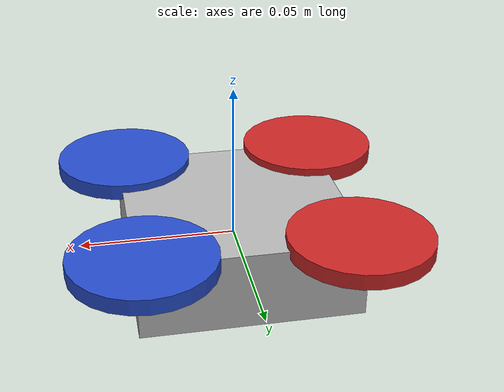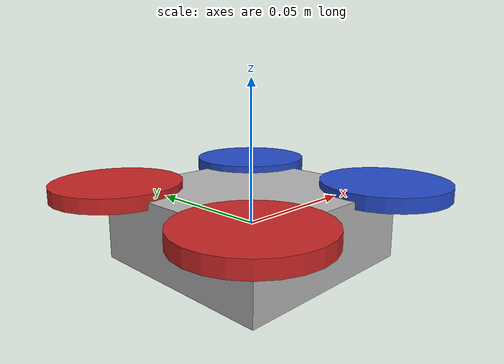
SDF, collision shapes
<sdf version='1.6'>
  <model name='crazyflie'>
    <link name='base_link'>
      <pose frame=''>0 0 0 0 -0 0</pose>
      <inertial>
        <pose frame=''>0 0 0 0 -0 0</pose>
        <mass>0.025</mass>
        <inertia>
          <ixx>1.65717e-05</ixx>
          <ixy>8.30806e-07</ixy>
          <ixz>7.18277e-07</ixz>
          <iyy>1.66556e-05</iyy>
          <iyz>1.8002e-06</iyz>
          <izz>2.92617e-05</izz>
        </inertia>
      </inertial>
      <collision name='base_link_inertia_collision'>
        <pose frame=''>0 0 0 0 -0 0</pose>
        <geometry>
          <box>
            <size>0.07 0.07 0.025</size>
          </box>
        </geometry>
        <surface>
          <contact>
            <ode>
              <min_depth>0.001</min_depth>
              <max_vel>0</max_vel>
            </ode>
          </contact>
          <friction>
            <ode/>
          </friction>
        </surface>
      </collision>
      <visual name='base_link_inertia_visual'>
        <pose frame=''>0 0 0 0 -0 0</pose>
        <geometry>
          <mesh>
            <scale>1 1 1</scale>
            <uri>/home/arpad/dev/sp/rosws/src/sim_cf/crazyflie_gazebo/models/rotors_description/meshes/crazyflie.dae</uri>
          </mesh>
        </geometry>
        <material>
          <script>
            <uri>__default__</uri>
            <name>__default__</name>
          </script>
        </material>
      </visual>
      <gravity>1</gravity>
      <velocity_decay/>
    </link>
    <link name='//imu_link'>
      <pose frame=''>0 0 0 0 -0 0</pose>
      <inertial>
        <pose frame=''>0 0 0 0 -0 0</pose>
        <mass>1e-05</mass>
        <inertia>
          <ixx>1e-10</ixx>
          <ixy>0</ixy>
          <ixz>0</ixz>
          <iyy>1e-10</iyy>
          <iyz>0</iyz>
          <izz>1e-10</izz>
        </inertia>
      </inertial>
    </link>
    <joint name='//imu_joint' type='revolute'>
      <child>//imu_link</child>
      <parent>base_link</parent>
      <axis>
        <xyz>1 0 0</xyz>
        <limit>
          <lower>0</lower>
          <upper>0</upper>
          <effort>0</effort>
          <velocity>0</velocity>
        </limit>
        <dynamics>
          <spring_reference>0</spring_reference>
          <spring_stiffness>0</spring_stiffness>
        </dynamics>
        <use_parent_model_frame>1</use_parent_model_frame>
      </axis>
    </joint>
    <link name='//magnetometer_link'>
      <pose frame=''>0 0 0 0 -0 0</pose>
      <inertial>
        <pose frame=''>0 0 0 0 -0 0</pose>
        <mass>1e-05</mass>
        <inertia>
          <ixx>1e-10</ixx>
          <ixy>0</ixy>
          <ixz>0</ixz>
          <iyy>1e-10</iyy>
          <iyz>0</iyz>
          <izz>1e-10</izz>
        </inertia>
      </inertial>
    </link>
    <joint name='//magnetometer_joint' type='revolute'>
      <child>//magnetometer_link</child>
      <parent>base_link</parent>
      <axis>
        <xyz>1 0 0</xyz>
        <limit>
          <lower>0</lower>
          <upper>0</upper>
          <effort>0</effort>
          <velocity>0</velocity>
        </limit>
        <dynamics>
          <spring_reference>0</spring_reference>
          <spring_stiffness>0</spring_stiffness>
        </dynamics>
        <use_parent_model_frame>1</use_parent_model_frame>
      </axis>
    </joint>
    <link name='//pressure_sensor_link'>
      <pose frame=''>0 0 0 0 -0 0</pose>
      <inertial>
        <pose frame=''>0 0 0 0 -0 0</pose>
        <mass>1e-05</mass>
        <inertia>
          <ixx>1e-10</ixx>
          <ixy>0</ixy>
          <ixz>0</ixz>
          <iyy>1e-10</iyy>
          <iyz>0</iyz>
          <izz>1e-10</izz>
        </inertia>
      </inertial>
    </link>
    <joint name='//pressure_sensor_joint' type='revolute'>
      <child>//pressure_sensor_link</child>
      <parent>base_link</parent>
      <axis>
        <xyz>1 0 0</xyz>
        <limit>
          <lower>0</lower>
          <upper>0</upper>
          <effort>0</effort>
          <velocity>0</velocity>
        </limit>
        <dynamics>
          <spring_reference>0</spring_reference>
          <spring_stiffness>0</spring_stiffness>
        </dynamics>
        <use_parent_model_frame>1</use_parent_model_frame>
      </axis>
    </joint>
    <link name='/odometry_sensorgt_link'>
      <pose frame=''>0 0 0 0 -0 0</pose>
      <inertial>
        <pose frame=''>0 0 0 0 -0 0</pose>
        <mass>1e-05</mass>
        <inertia>
          <ixx>1e-10</ixx>
          <ixy>0</ixy>
          <ixz>0</ixz>
          <iyy>1e-10</iyy>
          <iyz>0</iyz>
          <izz>1e-10</izz>
        </inertia>
      </inertial>
    </link>
    <joint name='/odometry_sensorgt_joint' type='revolute'>
      <child>/odometry_sensorgt_link</child>
      <parent>base_link</parent>
      <axis>
        <xyz>1 0 0</xyz>
        <limit>
          <lower>0</lower>
          <upper>0</upper>
          <effort>0</effort>
          <velocity>0</velocity>
        </limit>
        <dynamics>
          <spring_reference>0</spring_reference>
          <spring_stiffness>0</spring_stiffness>
        </dynamics>
        <use_parent_model_frame>1</use_parent_model_frame>
      </axis>
    </joint>
    <link name='rotor_0'>
      <pose frame=''>0.032527 -0.032527 0.0125 0 -0 0</pose>
      <inertial>
        <pose frame=''>0 0 0 0 -0 0</pose>
        <mass>0.00075</mass>
        <inertia>
          <ixx>1.61875e-07</ixx>
          <ixy>0</ixy>
          <ixz>0</ixz>
          <iyy>8.86375e-06</iyy>
          <iyz>0</iyz>
          <izz>9.01687e-06</izz>
        </inertia>
      </inertial>
      <collision name='rotor_0_collision'>
        <pose frame=''>0 0 0 0 -0 0</pose>
        <geometry>
          <cylinder>
            <length>0.005</length>
            <radius>0.0225</radius>
          </cylinder>
        </geometry>
        <surface>
          <contact>
            <ode/>
          </contact>
          <friction>
            <ode/>
          </friction>
        </surface>
      </collision>
      <visual name='rotor_0_visual'>
        <pose frame=''>0 0 0 0 -0 0</pose>
        <geometry>
          <mesh>
            <scale>1 1 1</scale>
            <uri>/home/arpad/dev/sp/rosws/src/sim_cf/crazyflie_gazebo/models/rotors_description/meshes/crazyflie_prop.dae</uri>
          </mesh>
        </geometry>
        <material>
          <script>
            <name>Gazebo/Blue</name>
            <uri>file://media/materials/scripts/gazebo.material</uri>
          </script>
        </material>
      </visual>
      <gravity>1</gravity>
      <velocity_decay/>
    </link>
    <joint name='rotor_0_joint' type='revolute'>
      <child>rotor_0</child>
      <parent>base_link</parent>
      <axis>
        <xyz>0 0 1</xyz>
        <limit>
          <lower>-1e+16</lower>
          <upper>1e+16</upper>
        </limit>
        <dynamics>
          <spring_reference>0</spring_reference>
          <spring_stiffness>0</spring_stiffness>
        </dynamics>
        <use_parent_model_frame>1</use_parent_model_frame>
      </axis>
    </joint>
    <link name='rotor_1'>
      <pose frame=''>-0.032527 -0.032527 0.0125 0 -0 0</pose>
      <inertial>
        <pose frame=''>0 0 0 0 -0 0</pose>
        <mass>0.00075</mass>
        <inertia>
          <ixx>1.61875e-07</ixx>
          <ixy>0</ixy>
          <ixz>0</ixz>
          <iyy>8.86375e-06</iyy>
          <iyz>0</iyz>
          <izz>9.01687e-06</izz>
        </inertia>
      </inertial>
      <collision name='rotor_1_collision'>
        <pose frame=''>0 0 0 0 -0 0</pose>
        <geometry>
          <cylinder>
            <length>0.005</length>
            <radius>0.0225</radius>
          </cylinder>
        </geometry>
        <surface>
          <contact>
            <ode/>
          </contact>
          <friction>
            <ode/>
          </friction>
        </surface>
      </collision>
      <visual name='rotor_1_visual'>
        <pose frame=''>0 0 0 0 -0 0</pose>
        <geometry>
          <mesh>
            <scale>1 1 1</scale>
            <uri>/home/arpad/dev/sp/rosws/src/sim_cf/crazyflie_gazebo/models/rotors_description/meshes/crazyflie_prop.dae</uri>
          </mesh>
        </geometry>
        <material>
          <script>
            <name>Gazebo/Red</name>
            <uri>file://media/materials/scripts/gazebo.material</uri>
          </script>
        </material>
      </visual>
      <gravity>1</gravity>
      <velocity_decay/>
    </link>
    <joint name='rotor_1_joint' type='revolute'>
      <child>rotor_1</child>
      <parent>base_link</parent>
      <axis>
        <xyz>0 0 1</xyz>
        <limit>
          <lower>-1e+16</lower>
          <upper>1e+16</upper>
        </limit>
        <dynamics>
          <spring_reference>0</spring_reference>
          <spring_stiffness>0</spring_stiffness>
        </dynamics>
        <use_parent_model_frame>1</use_parent_model_frame>
      </axis>
    </joint>
    <link name='rotor_2'>
      <pose frame=''>-0.032527 0.032527 0.0125 0 -0 0</pose>
      <inertial>
        <pose frame=''>0 0 0 0 -0 0</pose>
        <mass>0.00075</mass>
        <inertia>
          <ixx>1.61875e-07</ixx>
          <ixy>0</ixy>
          <ixz>0</ixz>
          <iyy>8.86375e-06</iyy>
          <iyz>0</iyz>
          <izz>9.01687e-06</izz>
        </inertia>
      </inertial>
      <collision name='rotor_2_collision'>
        <pose frame=''>0 0 0 0 -0 0</pose>
        <geometry>
          <cylinder>
            <length>0.005</length>
            <radius>0.0225</radius>
          </cylinder>
        </geometry>
        <surface>
          <contact>
            <ode/>
          </contact>
          <friction>
            <ode/>
          </friction>
        </surface>
      </collision>
      <visual name='rotor_2_visual'>
        <pose frame=''>0 0 0 0 -0 0</pose>
        <geometry>
          <mesh>
            <scale>1 1 1</scale>
            <uri>/home/arpad/dev/sp/rosws/src/sim_cf/crazyflie_gazebo/models/rotors_description/meshes/crazyflie_prop.dae</uri>
          </mesh>
        </geometry>
        <material>
          <script>
            <name>Gazebo/Red</name>
            <uri>file://media/materials/scripts/gazebo.material</uri>
          </script>
        </material>
      </visual>
      <gravity>1</gravity>
      <velocity_decay/>
    </link>
    <joint name='rotor_2_joint' type='revolute'>
      <child>rotor_2</child>
      <parent>base_link</parent>
      <axis>
        <xyz>0 0 1</xyz>
        <limit>
          <lower>-1e+16</lower>
          <upper>1e+16</upper>
        </limit>
        <dynamics>
          <spring_reference>0</spring_reference>
          <spring_stiffness>0</spring_stiffness>
        </dynamics>
        <use_parent_model_frame>1</use_parent_model_frame>
      </axis>
    </joint>
    <link name='rotor_3'>
      <pose frame=''>0.032527 0.032527 0.0125 0 -0 0</pose>
      <inertial>
        <pose frame=''>0 0 0 0 -0 0</pose>
        <mass>0.00075</mass>
        <inertia>
          <ixx>1.61875e-07</ixx>
          <ixy>0</ixy>
          <ixz>0</ixz>
          <iyy>8.86375e-06</iyy>
          <iyz>0</iyz>
          <izz>9.01687e-06</izz>
        </inertia>
      </inertial>
      <collision name='rotor_3_collision'>
        <pose frame=''>0 0 0 0 -0 0</pose>
        <geometry>
          <cylinder>
            <length>0.005</length>
            <radius>0.0225</radius>
          </cylinder>
        </geometry>
        <surface>
          <contact>
            <ode/>
          </contact>
          <friction>
            <ode/>
          </friction>
        </surface>
      </collision>
      <visual name='rotor_3_visual'>
        <pose frame=''>0 0 0 0 -0 0</pose>
        <geometry>
          <mesh>
            <scale>1 1 1</scale>
            <uri>/home/arpad/dev/sp/rosws/src/sim_cf/crazyflie_gazebo/models/rotors_description/meshes/crazyflie_prop.dae</uri>
          </mesh>
        </geometry>
        <material>
          <script>
            <name>Gazebo/Blue</name>
            <uri>file://media/materials/scripts/gazebo.material</uri>
          </script>
        </material>
      </visual>
      <gravity>1</gravity>
      <velocity_decay/>
    </link>
    <joint name='rotor_3_joint' type='revolute'>
      <child>rotor_3</child>
      <parent>base_link</parent>
      <axis>
        <xyz>0 0 1</xyz>
        <limit>
          <lower>-1e+16</lower>
          <upper>1e+16</upper>
        </limit>
        <dynamics>
          <spring_reference>0</spring_reference>
          <spring_stiffness>0</spring_stiffness>
        </dynamics>
        <use_parent_model_frame>1</use_parent_model_frame>
      </axis>
    </joint>
    <plugin name='rosbag' filename='librotors_gazebo_multirotor_base_plugin.so'>
      <robotNamespace>/</robotNamespace>
      <linkName>base_link</linkName>
      <rotorVelocitySlowdownSim>70</rotorVelocitySlowdownSim>
    </plugin>
    <plugin name='front_right_motor_model' filename='librotors_gazebo_motor_model.so'>
      <robotNamespace>/</robotNamespace>
      <jointName>rotor_0_joint</jointName>
      <linkName>rotor_0</linkName>
      <turningDirection>ccw</turningDirection>
      <timeConstantUp>0.0125</timeConstantUp>
      <timeConstantDown>0.025</timeConstantDown>
      <maxRotVelocity>3052</maxRotVelocity>
      <motorConstant>1.2819184e-08</motorConstant>
      <momentConstant>0.005964552</momentConstant>
      <commandSubTopic>/gazebo/command/motor_speed</commandSubTopic>
      <motorNumber>0</motorNumber>
      <rotorDragCoefficient>9.1785e-07</rotorDragCoefficient>
      <rollingMomentCoefficient>1e-07</rollingMomentCoefficient>
      <motorSpeedPubTopic>/motor_speed/0</motorSpeedPubTopic>
      <rotorVelocitySlowdownSim>70</rotorVelocitySlowdownSim>
    </plugin>
    <plugin name='back_left_motor_model' filename='librotors_gazebo_motor_model.so'>
      <robotNamespace>/</robotNamespace>
      <jointName>rotor_2_joint</jointName>
      <linkName>rotor_2</linkName>
      <turningDirection>ccw</turningDirection>
      <timeConstantUp>0.0125</timeConstantUp>
      <timeConstantDown>0.025</timeConstantDown>
      <maxRotVelocity>3052</maxRotVelocity>
      <motorConstant>1.2819184e-08</motorConstant>
      <momentConstant>0.005964552</momentConstant>
      <commandSubTopic>/gazebo/command/motor_speed</commandSubTopic>
      <motorNumber>2</motorNumber>
      <rotorDragCoefficient>9.1785e-07</rotorDragCoefficient>
      <rollingMomentCoefficient>1e-07</rollingMomentCoefficient>
      <motorSpeedPubTopic>/motor_speed/2</motorSpeedPubTopic>
      <rotorVelocitySlowdownSim>70</rotorVelocitySlowdownSim>
    </plugin>
    <plugin name='front_left_motor_model' filename='librotors_gazebo_motor_model.so'>
      <robotNamespace>/</robotNamespace>
      <jointName>rotor_3_joint</jointName>
      <linkName>rotor_3</linkName>
      <turningDirection>cw</turningDirection>
      <timeConstantUp>0.0125</timeConstantUp>
      <timeConstantDown>0.025</timeConstantDown>
      <maxRotVelocity>3052</maxRotVelocity>
      <motorConstant>1.2819184e-08</motorConstant>
      <momentConstant>0.005964552</momentConstant>
      <commandSubTopic>/gazebo/command/motor_speed</commandSubTopic>
      <motorNumber>3</motorNumber>
      <rotorDragCoefficient>9.1785e-07</rotorDragCoefficient>
      <rollingMomentCoefficient>1e-07</rollingMomentCoefficient>
      <motorSpeedPubTopic>/motor_speed/3</motorSpeedPubTopic>
      <rotorVelocitySlowdownSim>70</rotorVelocitySlowdownSim>
    </plugin>
    <plugin name='back_right_motor_model' filename='librotors_gazebo_motor_model.so'>
      <robotNamespace>/</robotNamespace>
      <jointName>rotor_1_joint</jointName>
      <linkName>rotor_1</linkName>
      <turningDirection>cw</turningDirection>
      <timeConstantUp>0.0125</timeConstantUp>
      <timeConstantDown>0.025</timeConstantDown>
      <maxRotVelocity>3052</maxRotVelocity>
      <motorConstant>1.2819184e-08</motorConstant>
      <momentConstant>0.005964552</momentConstant>
      <commandSubTopic>/gazebo/command/motor_speed</commandSubTopic>
      <motorNumber>1</motorNumber>
      <rotorDragCoefficient>9.1785e-07</rotorDragCoefficient>
      <rollingMomentCoefficient>1e-07</rollingMomentCoefficient>
      <motorSpeedPubTopic>/motor_speed/1</motorSpeedPubTopic>
      <rotorVelocitySlowdownSim>70</rotorVelocitySlowdownSim>
    </plugin>
    <plugin name='rotors_gazebo_imu_plugin' filename='librotors_gazebo_imu_plugin.so'>
      <robotNamespace>/</robotNamespace>
      <linkName>//imu_link</linkName>
      <imuTopic>gazebo/imu</imuTopic>
      <gyroscopeNoiseDensity>0.00017667</gyroscopeNoiseDensity>
      <gyroscopeRandomWalk>9.2542e-06</gyroscopeRandomWalk>
      <gyroscopeBiasCorrelationTime>1000.0</gyroscopeBiasCorrelationTime>
      <gyroscopeTurnOnBiasSigma>0.03</gyroscopeTurnOnBiasSigma>
      <accelerometerNoiseDensity>0.0032</accelerometerNoiseDensity>
      <accelerometerRandomWalk>0.00013524</accelerometerRandomWalk>
      <accelerometerBiasCorrelationTime>300.0</accelerometerBiasCorrelationTime>
      <accelerometerTurnOnBiasSigma>0.1</accelerometerTurnOnBiasSigma>
    </plugin>
    <plugin name='rotors_gazebo_magnetometer_plugin' filename='librotors_gazebo_magnetometer_plugin.so'>
      <robotNamespace>/</robotNamespace>
      <linkName>//magnetometer_link</linkName>
      <magnetometerTopic>gazebo/magnetic_field</magnetometerTopic>
      <rate>10</rate>
      <refMagNorth>2.1493e-05</refMagNorth>
      <refMagEast>8.15e-07</refMagEast>
      <refMagDown>4.2795e-05</refMagDown>
      <noiseNormal>7.07868618e-07 6.73106045e-07 7.28724033e-07</noiseNormal>
      <noiseUniformInitialBias>0.0000004 0.0000004 0.0000004</noiseUniformInitialBias>
    </plugin>
    <plugin name='rotors_gazebo_pressure_sensor_plugin' filename='librotors_gazebo_pressure_plugin.so'>
      <robotNamespace>/</robotNamespace>
      <linkName>//pressure_sensor_link</linkName>
      <pressureTopic>gazebo/air_pressure</pressureTopic>
      <rate>10</rate>
      <referenceAltitude>500.0</referenceAltitude>
      <pressureVariance>399.143626</pressureVariance>
    </plugin>
    <plugin name='lps_plugin' filename='librotors_gazebo_lps_plugin.so'>
      <robotNamespace>/</robotNamespace>
      <lpsStdDev>0.0</lpsStdDev>
      <rate>100</rate>
    </plugin>
    <plugin name='crtp_interface' filename='libgazebo_crtp_interface.so'>
      <robotNamespace>/</robotNamespace>
      <imuSubTopic>gazebo/imu</imuSubTopic>
      <magnetometerTopic>gazebo/magnetic_field</magnetometerTopic>
      <pressureTopic>gazebo/air_pressure</pressureTopic>
      <motorSpeedsPubTopic>gazebo/command/motor_speed</motorSpeedsPubTopic>
      <crazyflieURI>INADDR_ANY://19950</crazyflieURI>
      <rollTrim>0</rollTrim>
      <pitchTrim>0</pitchTrim>
      <enableLogging>1</enableLogging>
      <useRosTime>1</useRosTime>
      <enableLoggingImu>1</enableLoggingImu>
      <enableLoggingTemperature>0</enableLoggingTemperature>
      <enableLoggingMagneticField>0</enableLoggingMagneticField>
      <enableLoggingPressure>0</enableLoggingPressure>
      <enableLoggingBattery>0</enableLoggingBattery>
      <enableLoggingPackets>0</enableLoggingPackets>
      <enableParameters>1</enableParameters>
      <rotorCount>4</rotorCount>
    </plugin>
    <static>0</static>
    <plugin name='odometry_sensorgt' filename='librotors_gazebo_odometry_plugin.so'>
      <linkName>/odometry_sensorgt_link</linkName>
      <robotNamespace/>
      <poseTopic>ground_thruth/pose</poseTopic>
      <poseWithCovarianceTopic>ground_thruth/pose_with_covariance</poseWithCovarianceTopic>
      <positionTopic>ground_thruth/position</positionTopic>
      <transformTopic>ground_thruth/transform</transformTopic>
      <odometryTopic>ground_thruth/odometry</odometryTopic>
      <parentFrameId>world</parentFrameId>
      <childFrameId>base_link</childFrameId>
      <measurementDivisor>1</measurementDivisor>
      <measurementDelay>0</measurementDelay>
      <unknownDelay>0.0</unknownDelay>
      <noiseNormalPosition>0 0 0</noiseNormalPosition>
      <noiseNormalQuaternion>0 0 0</noiseNormalQuaternion>
      <noiseNormalLinearVelocity>0 0 0</noiseNormalLinearVelocity>
      <noiseNormalAngularVelocity>0 0 0</noiseNormalAngularVelocity>
      <noiseUniformPosition>0 0 0</noiseUniformPosition>
      <noiseUniformQuaternion>0 0 0</noiseUniformQuaternion>
      <noiseUniformLinearVelocity>0 0 0</noiseUniformLinearVelocity>
      <noiseUniformAngularVelocity>0 0 0</noiseUniformAngularVelocity>
    </plugin>
  </model>
</sdf>
